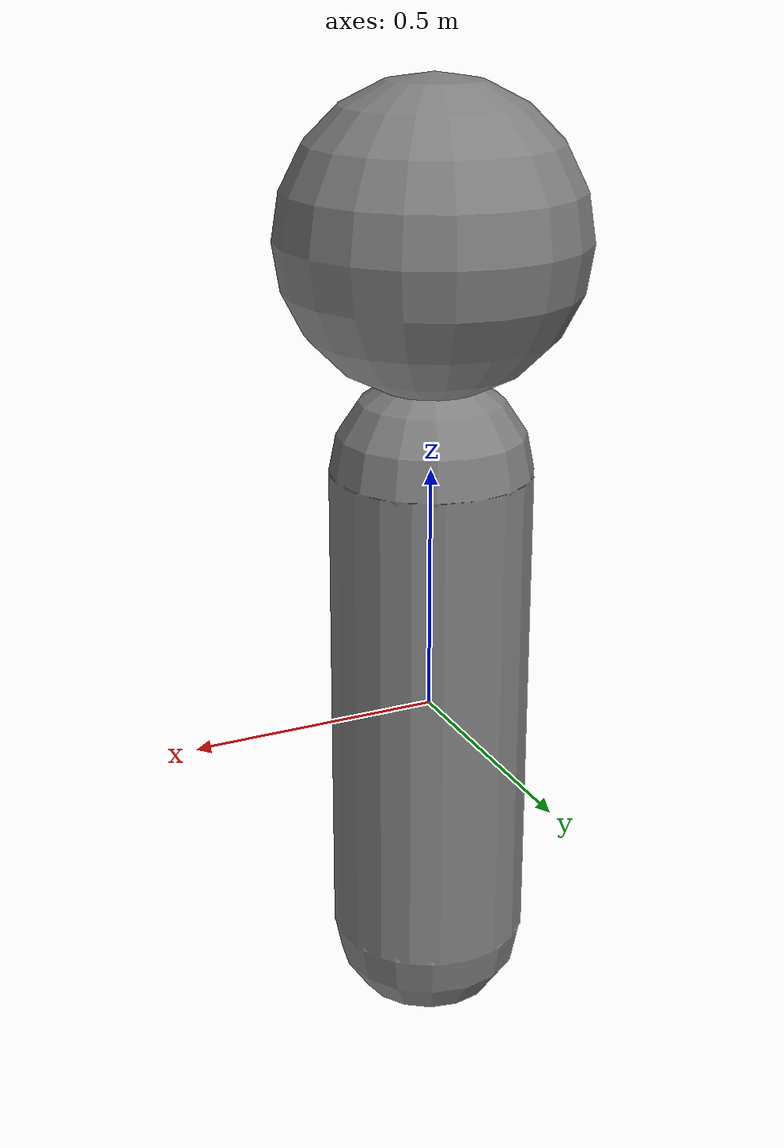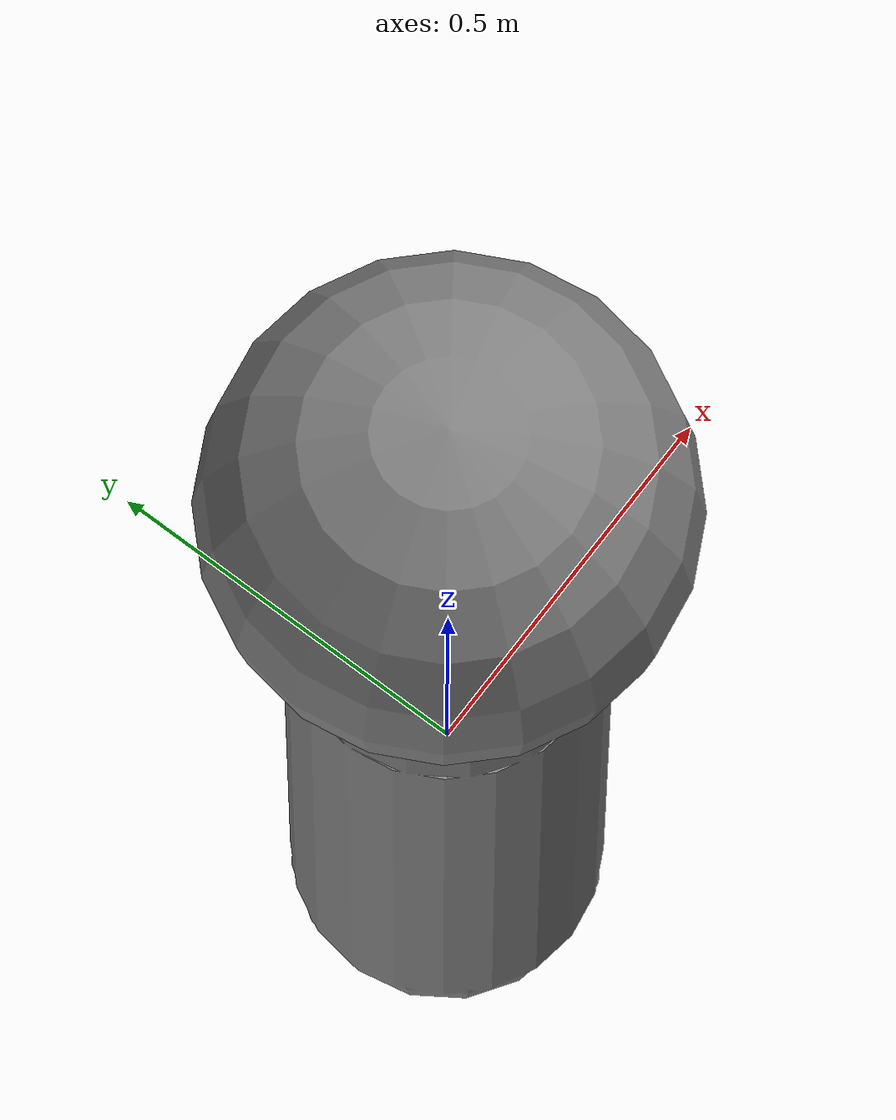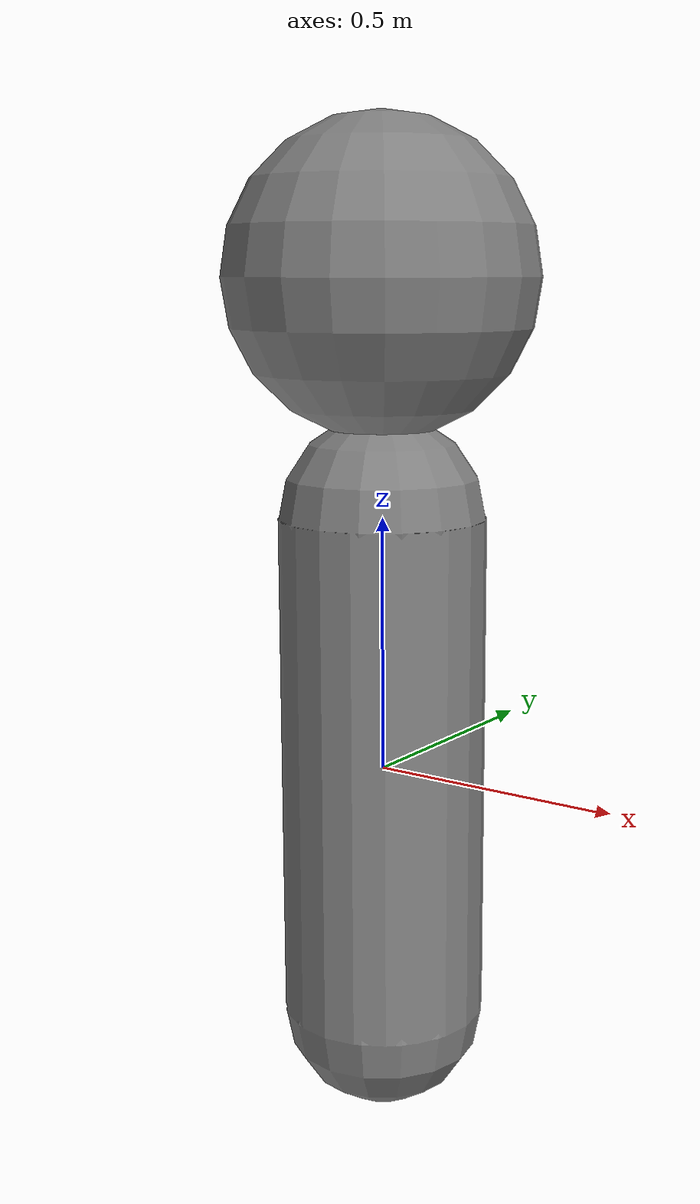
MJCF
<mujoco model="sphere_capsule_endpoint">
            <option gravity="0 0 0" timestep="0.001"/>
            <worldbody>
                <body name="cap" pos="0 0 0">
                    <joint type="free"/>
                    <geom type="capsule" size="0.2 0.5"/>
                </body>
                <body name="sph" pos="0 0 0.95">
                    <joint type="free"/>
                    <geom type="sphere" size="0.3"/>
                </body>
            </worldbody>
        </mujoco>
